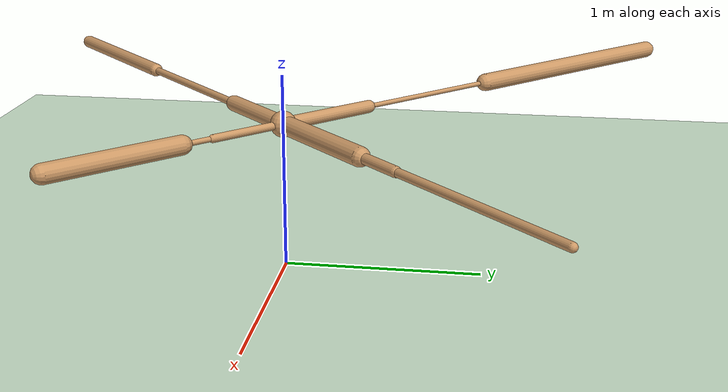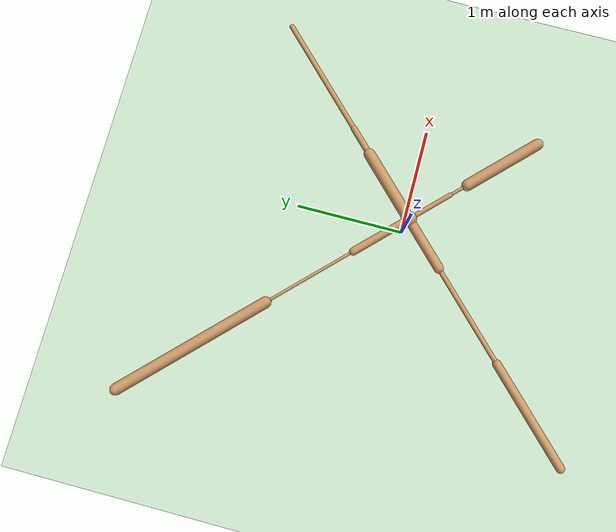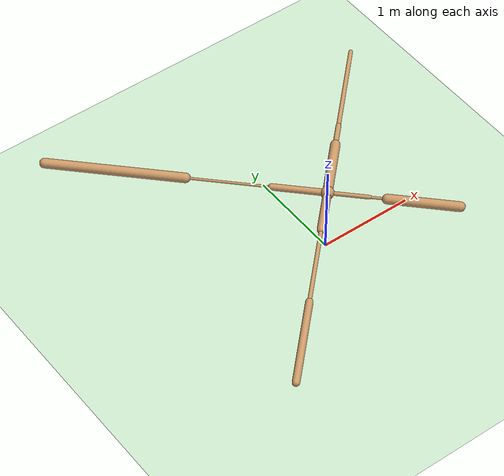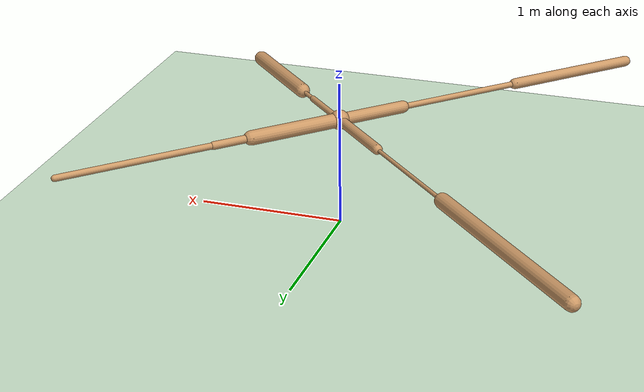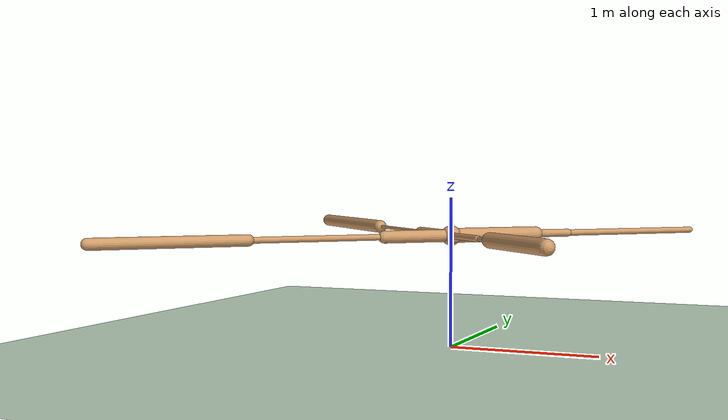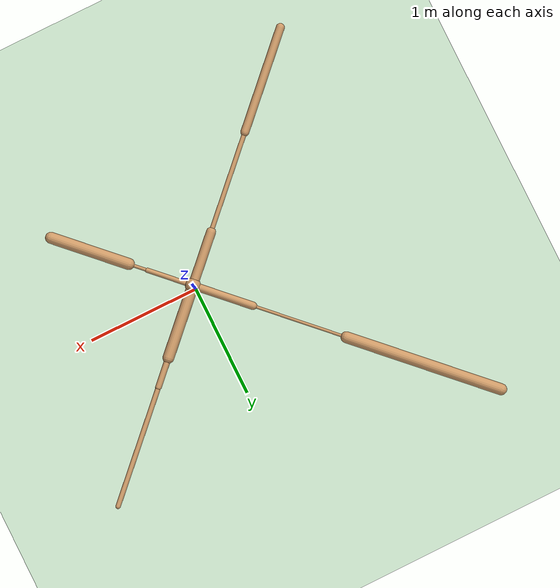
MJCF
<mujoco model="ant">
  <compiler angle="degree" coordinate="local" inertiafromgeom="true" />
  <option integrator="RK4" timestep="0.01" />
  <custom>
    <numeric data="0.0 0.0 0.55 1.0 0.0 0.0 0.0 0.0 1.0 0.0 -1.0 0.0 -1.0 0.0 1.0" name="init_qpos" />
  </custom>
  <default>
    <joint armature="1" damping="1" limited="true" />
    <geom conaffinity="0" condim="3" density="5.0" friction="1 0.5 0.5" margin="0.01" rgba="0.8 0.6 0.4 1" />
  </default>
  <asset>
    <texture builtin="gradient" height="100" rgb1="1 1 1" rgb2="0 0 0" type="skybox" width="100" />
    <texture builtin="flat" height="1278" mark="cross" markrgb="1 1 1" name="texgeom" random="0.01" rgb1="0.8 0.6 0.4" rgb2="0.8 0.6 0.4" type="cube" width="127" />
    <texture builtin="checker" height="100" name="texplane" rgb1="0 0 0" rgb2="0.8 0.8 0.8" type="2d" width="100" />
    <material name="MatPlane" reflectance="0.5" shininess="1" specular="1" texrepeat="60 60" texture="texplane" />
    <material name="geom" texture="texgeom" texuniform="true" />
  </asset>
  <worldbody>
    <light cutoff="100" diffuse="1 1 1" dir="-0 0 -1.3" directional="true" exponent="1" pos="0 0 1.3" specular=".1 .1 .1" />
    <geom conaffinity="1" condim="3" material="MatPlane" name="floor" pos="0 0 0" rgba="0.8 0.9 0.8 1" size="40 40 40" type="plane" />
    <body name="torso" pos="0 0 0.75">
      <camera name="track" mode="trackcom" pos="0 -11 5" xyaxes="1 0 0 0 0.5 1" />
      <geom name="torso_geom" pos="0 0 0" size="0.06667713075876236" type="sphere" />
      <joint armature="0" damping="0" limited="false" margin="0.01" name="root" pos="0 0 0" type="free" />
      <body name="front_left_leg" pos="0 0 0">
        <geom fromto="0 0 0 0.45104023814201355 0.45104023814201355 0" name="aux_1_geom" size="0.048713814467191696" type="capsule" />
        <body name="aux_1" pos="0.45104023814201355 0.45104023814201355 0">
          <joint axis="0 0 1" name="hip_1" pos="0.0 0.0 0.0" range="-30 30" type="hinge" />
          <geom fromto="0 0 0 0.1837935894727707 0.1837935894727707 0" name="left_leg_geom" size="0.026737015694379807" type="capsule" />
          <body name="left_leg_geom_aux" pos="0.1837935894727707 0.1837935894727707 0">
            <joint axis="-1 1 0" name="ankle_1" pos="0.0 0.0 0.0" range="30 70" type="hinge" />
            <geom fromto="0 0 0 0.7402119636535645 0.7402119636535645 0" name="left_ankle_geom" size="0.021589329466223717" type="capsule" />
          </body>
        </body>
      </body>
      <body name="front_right_leg" pos="0 0 0">
        <geom fromto="0 0 0 -0.37573370337486267 0.37573370337486267 0" name="aux_2_geom" size="0.033661000430583954" type="capsule" />
        <body name="aux_2" pos="-0.37573370337486267 0.37573370337486267 0">
          <joint axis="0 0 1" name="hip_2" pos="0.0 0.0 0.0" range="-30 30" type="hinge" />
          <geom fromto="0 0 0 -0.5830392241477966 0.5830392241477966 0" name="right_leg_geom" size="0.012638889253139496" type="capsule" />
          <body name="right_leg_geom_aux" pos="-0.5830392241477966 0.5830392241477966 0">
            <joint axis="1 1 0" name="ankle_2" pos="0.0 0.0 0.0" range="-70 -30" type="hinge" />
            <geom fromto="0 0 0 -0.9646878242492676 0.9646878242492676 0" name="right_ankle_geom" size="0.04890057072043419" type="capsule" />
          </body>
        </body>
      </body>
      <body name="back_leg" pos="0 0 0">
        <geom fromto="0 0 0 -0.3348851799964905 -0.3348851799964905 0" name="aux_3_geom" size="0.04133200645446777" type="capsule" />
        <body name="aux_3" pos="-0.3348851799964905 -0.3348851799964905 0">
          <joint axis="0 0 1" name="hip_3" pos="0.0 0.0 0.0" range="-30 30" type="hinge" />
          <geom fromto="0 0 0 -0.6276580095291138 -0.6276580095291138 0" name="back_leg_geom" size="0.020001672208309174" type="capsule" />
          <body name="back_leg_geom_aux" pos="-0.6276580095291138 -0.6276580095291138 0">
            <joint axis="-1 1 0" name="ankle_3" pos="0.0 0.0 0.0" range="-70 -30" type="hinge" />
            <geom fromto="0 0 0 -0.6594387292861938 -0.6594387292861938 0" name="third_ankle_geom" size="0.03671480715274811" type="capsule" />
          </body>
        </body>
      </body>
      <body name="right_back_leg" pos="0 0 0">
        <geom fromto="0 0 0 0.28420838713645935 -0.28420838713645935 0" name="aux_4_geom" size="0.020687101408839226" type="capsule" />
        <body name="aux_4" pos="0.28420838713645935 -0.28420838713645935 0">
          <joint axis="0 0 1" name="hip_4" pos="0.0 0.0 0.0" range="-30 30" type="hinge" />
          <geom fromto="0 0 0 0.11590814590454102 -0.11590814590454102 0" name="rightback_leg_geom" size="0.013833355158567429" type="capsule" />
          <body name="rightback_leg_geom_aux" pos="0.11590814590454102 -0.11590814590454102 0">
            <joint axis="1 1 0" name="ankle_4" pos="0.0 0.0 0.0" range="30 70" type="hinge" />
            <geom fromto="0 0 0 0.48771798610687256 -0.48771798610687256 0" name="fourth_ankle_geom" size="0.04909928888082504" type="capsule" />
          </body>
        </body>
      </body>
    </body>
  </worldbody>
  <actuator>
    <motor ctrllimited="true" ctrlrange="-1.0 1.0" joint="hip_4" gear="150" />
    <motor ctrllimited="true" ctrlrange="-1.0 1.0" joint="ankle_4" gear="150" />
    <motor ctrllimited="true" ctrlrange="-1.0 1.0" joint="hip_1" gear="150" />
    <motor ctrllimited="true" ctrlrange="-1.0 1.0" joint="ankle_1" gear="150" />
    <motor ctrllimited="true" ctrlrange="-1.0 1.0" joint="hip_2" gear="150" />
    <motor ctrllimited="true" ctrlrange="-1.0 1.0" joint="ankle_2" gear="150" />
    <motor ctrllimited="true" ctrlrange="-1.0 1.0" joint="hip_3" gear="150" />
    <motor ctrllimited="true" ctrlrange="-1.0 1.0" joint="ankle_3" gear="150" />
  </actuator>
</mujoco>
